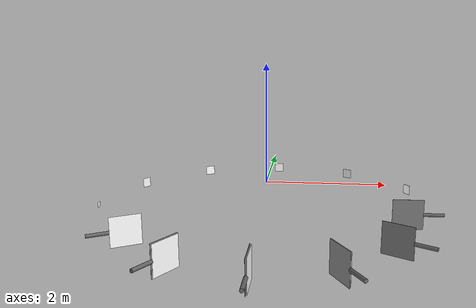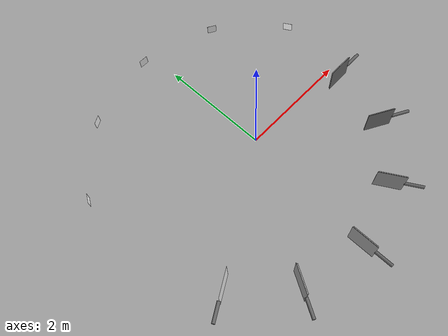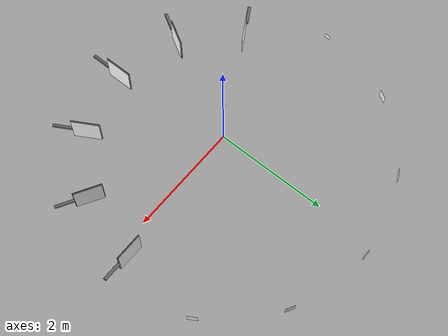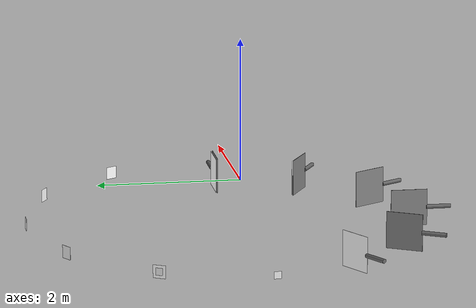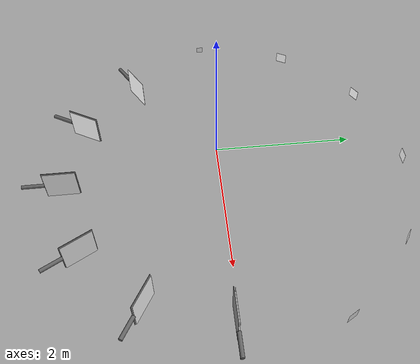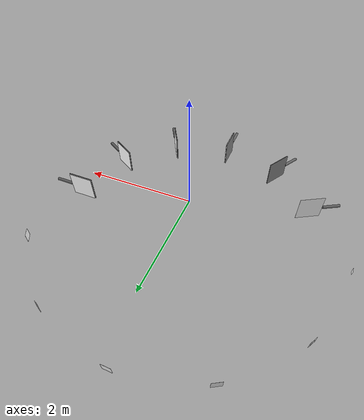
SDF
<?xml version="1.0"?>

<sdf version="1.6">
  <world name="default">

    <include>
      <uri>model://sun</uri>
    </include>

    <model name="marker0">
      <include>
        <static>true</static>
        <uri>model://marker_0</uri>
      </include>
      <pose>3.0 0.0 -0.5 0 -1.5707963267948966 0</pose>
    </model>
    <model name="marker1">
      <include>
        <static>true</static>
        <uri>model://marker_1</uri>
      </include>
      <pose>2.598076211353316 -1.4999999999999998 -0.5 -0.5235987755982988 -1.5707963267948966 0</pose>
    </model>
    <model name="marker2">
      <include>
        <static>true</static>
        <uri>model://marker_2</uri>
      </include>
      <pose>1.5000000000000004 -2.598076211353316 -0.5 -1.0471975511965976 -1.5707963267948966 0</pose>
    </model>
    <model name="marker3">
      <include>
        <static>true</static>
        <uri>model://marker_3</uri>
      </include>
      <pose>1.8369701987210297e-16 -3.0 -0.5 -1.5707963267948966 -1.5707963267948966 0</pose>
    </model>
    <model name="marker4">
      <include>
        <static>true</static>
        <uri>model://marker_4</uri>
      </include>
      <pose>-1.4999999999999993 -2.598076211353316 -0.5 -2.0943951023931953 -1.5707963267948966 0</pose>
    </model>
    <model name="marker5">
      <include>
        <static>true</static>
        <uri>model://marker_5</uri>
      </include>
      <pose>-2.5980762113533156 -1.5000000000000009 -0.5 -2.617993877991494 -1.5707963267948966 0</pose>
    </model>
    <model name="marker6">
      <include>
        <static>true</static>
        <uri>model://marker_6</uri>
      </include>
      <pose>-3.0 -1.6996616692943939e-15 -0.5 -3.1415926535897927 -1.5707963267948966 0</pose>
    </model>
    <model name="marker7">
      <include>
        <static>true</static>
        <uri>model://marker_7</uri>
      </include>
      <pose>-2.598076211353317 1.4999999999999982 -0.5 -3.6651914291880914 -1.5707963267948966 0</pose>
    </model>
    <model name="marker8">
      <include>
        <static>true</static>
        <uri>model://marker_8</uri>
      </include>
      <pose>-1.5000000000000013 2.598076211353315 -0.5 -4.1887902047863905 -1.5707963267948966 0</pose>
    </model>
    <model name="marker9">
      <include>
        <static>true</static>
        <uri>model://marker_9</uri>
      </include>
      <pose>-5.51091059616309e-16 3.0 -0.5 -4.71238898038469 -1.5707963267948966 0</pose>
    </model>
    <model name="marker10">
      <include>
        <static>true</static>
        <uri>model://marker_10</uri>
      </include>
      <pose>1.5000000000000004 2.598076211353316 -0.5 -5.235987755982989 -1.5707963267948966 0</pose>
    </model>
    <model name="marker11">
      <include>
        <static>true</static>
        <uri>model://marker_11</uri>
      </include>
      <pose>2.5980762113533165 1.4999999999999991 -0.5 -5.759586531581288 -1.5707963267948966 0</pose>
    </model>
  </world>
</sdf>
